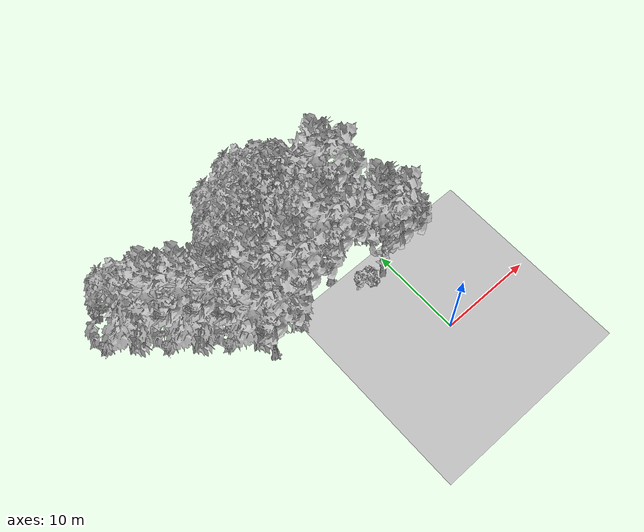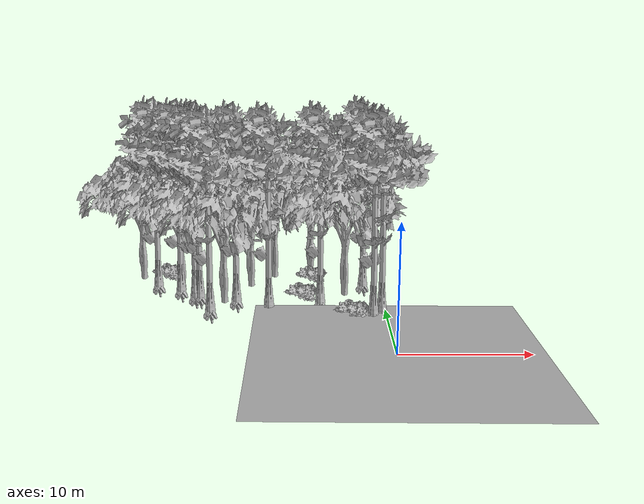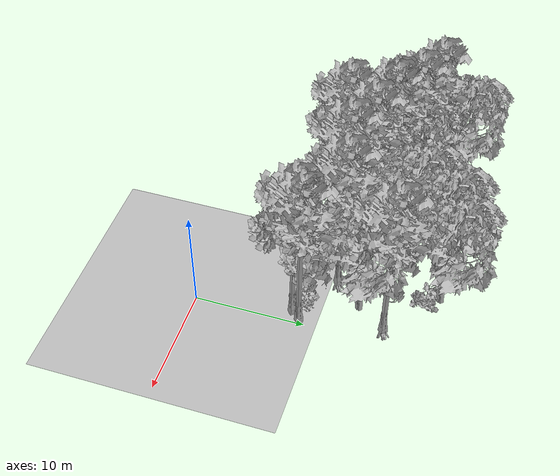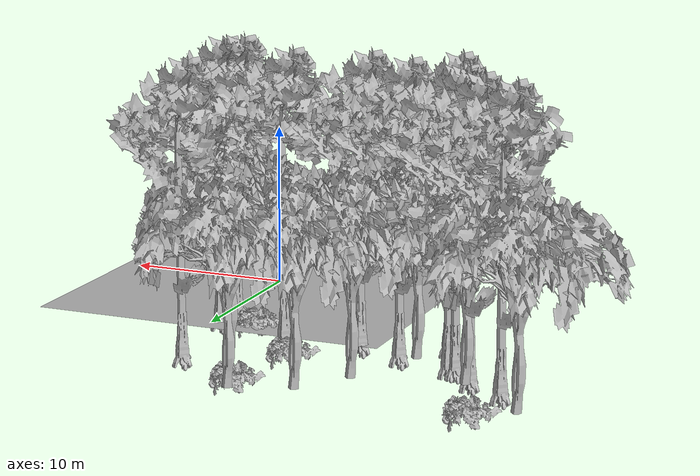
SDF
<sdf version="1.7">
 <world name="default">
  <model name="ground_plane">
   <static>1</static>
   <link name="link">
    <collision name="collision">
     <geometry><plane><normal>0 0 1</normal><size>100 100</size></plane></geometry>
     <surface><contact><ode><min_depth>0.01</min_depth><max_vel>0</max_vel></ode></contact></surface>
    </collision>
    <visual name="grass">
     <cast_shadows>0</cast_shadows>
     <geometry>
      <mesh>
       <scale>0.41000000000000003 0.41000000000000003 0.1</scale>
       <uri>file://grass_plane/meshes/grass_plane.dae</uri>
      </mesh>
     </geometry>
    </visual>
   </link>
  </model>
  <model name="Tree 29">
   <static>1</static>
   <pose>-18.007581378090077 14.752689949842008 0 1.57079 -0 0</pose>
   <link name="link">
    <collision name="collision">
     <geometry><mesh><scale>5 5 5</scale><uri>model://tree_9/meshes/tree_9.obj</uri></mesh></geometry>
    </collision>
    <visual name="visual">
     <geometry><mesh><scale>5 5 5</scale><uri>model://tree_9/meshes/tree_9.obj</uri></mesh></geometry>
    </visual>
   </link>
  </model>
  <model name="Tree 67">
   <static>1</static>
   <pose>-16.51270980587259 13.015987364559223 0 1.57079 -0 0</pose>
   <link name="link">
    <collision name="collision">
     <geometry><mesh><scale>5 5 5</scale><uri>model://tree_9/meshes/tree_9.obj</uri></mesh></geometry>
    </collision>
    <visual name="visual">
     <geometry><mesh><scale>5 5 5</scale><uri>model://tree_9/meshes/tree_9.obj</uri></mesh></geometry>
    </visual>
   </link>
  </model>
  <model name="Tree 90">
   <static>1</static>
   <pose>-14.790443552141355 9.24054400391472 0 1.57079 -0 0</pose>
   <link name="link">
    <collision name="collision">
     <geometry><mesh><scale>5 5 5</scale><uri>model://tree_9/meshes/tree_9.obj</uri></mesh></geometry>
    </collision>
    <visual name="visual">
     <geometry><mesh><scale>5 5 5</scale><uri>model://tree_9/meshes/tree_9.obj</uri></mesh></geometry>
    </visual>
   </link>
  </model>
  <model name="Tree 95">
   <static>1</static>
   <pose>-1.4726169784086949 16.752272059725186 0 1.57079 -0 0</pose>
   <link name="link">
    <collision name="collision">
     <geometry><mesh><scale>5 5 5</scale><uri>model://tree_9/meshes/tree_9.obj</uri></mesh></geometry>
    </collision>
    <visual name="visual">
     <geometry><mesh><scale>5 5 5</scale><uri>model://tree_9/meshes/tree_9.obj</uri></mesh></geometry>
    </visual>
   </link>
  </model>
  <model name="Tree 99">
   <static>1</static>
   <pose>-0.3490850998866293 9.459869655986061 0 1.57079 -0 0</pose>
   <link name="link">
    <collision name="collision">
     <geometry><mesh><scale>5 5 5</scale><uri>model://tree_9/meshes/tree_9.obj</uri></mesh></geometry>
    </collision>
    <visual name="visual">
     <geometry><mesh><scale>5 5 5</scale><uri>model://tree_9/meshes/tree_9.obj</uri></mesh></geometry>
    </visual>
   </link>
  </model>
  <model name="Tree 112">
   <static>1</static>
   <pose>-9.899704015344525 10.689790009107803 0 1.57079 -0 0</pose>
   <link name="link">
    <collision name="collision">
     <geometry><mesh><scale>5 5 5</scale><uri>model://tree_9/meshes/tree_9.obj</uri></mesh></geometry>
    </collision>
    <visual name="visual">
     <geometry><mesh><scale>5 5 5</scale><uri>model://tree_9/meshes/tree_9.obj</uri></mesh></geometry>
    </visual>
   </link>
  </model>
  <model name="Tree 158">
   <static>1</static>
   <pose>-18.06155878847854 15.18476219161063 0 1.57079 -0 0</pose>
   <link name="link">
    <collision name="collision">
     <geometry><mesh><scale>5 5 5</scale><uri>model://tree_2/meshes/tree_2.obj</uri></mesh></geometry>
    </collision>
    <visual name="visual">
     <geometry><mesh><scale>5 5 5</scale><uri>model://tree_2/meshes/tree_2.obj</uri></mesh></geometry>
    </visual>
   </link>
  </model>
  <model name="Tree 222">
   <static>1</static>
   <pose>-20.28313257199036 16.2040404915911 0 1.57079 -0 0</pose>
   <link name="link">
    <collision name="collision">
     <geometry><mesh><scale>5 5 5</scale><uri>model://tree_9/meshes/tree_9.obj</uri></mesh></geometry>
    </collision>
    <visual name="visual">
     <geometry><mesh><scale>5 5 5</scale><uri>model://tree_9/meshes/tree_9.obj</uri></mesh></geometry>
    </visual>
   </link>
  </model>
  <model name="Tree 241">
   <static>1</static>
   <pose>-16.08878769225285 12.952865579866732 0 1.57079 -0 0</pose>
   <link name="link">
    <collision name="collision">
     <geometry><mesh><scale>5 5 5</scale><uri>model://tree_9/meshes/tree_9.obj</uri></mesh></geometry>
    </collision>
    <visual name="visual">
     <geometry><mesh><scale>5 5 5</scale><uri>model://tree_9/meshes/tree_9.obj</uri></mesh></geometry>
    </visual>
   </link>
  </model>
  <model name="Tree 259">
   <static>1</static>
   <pose>-13.932378342446093 11.778304054915033 0 1.57079 -0 0</pose>
   <link name="link">
    <collision name="collision">
     <geometry><mesh><scale>5 5 5</scale><uri>model://tree_2/meshes/tree_2.obj</uri></mesh></geometry>
    </collision>
    <visual name="visual">
     <geometry><mesh><scale>5 5 5</scale><uri>model://tree_2/meshes/tree_2.obj</uri></mesh></geometry>
    </visual>
   </link>
  </model>
  <model name="Tree 260">
   <static>1</static>
   <pose>-12.782477383756117 11.96601270278721 0 1.57079 -0 0</pose>
   <link name="link">
    <collision name="collision">
     <geometry><mesh><scale>5 5 5</scale><uri>model://tree_9/meshes/tree_9.obj</uri></mesh></geometry>
    </collision>
    <visual name="visual">
     <geometry><mesh><scale>5 5 5</scale><uri>model://tree_9/meshes/tree_9.obj</uri></mesh></geometry>
    </visual>
   </link>
  </model>
  <model name="Tree 305">
   <static>1</static>
   <pose>-3.383652878231004 14.09125362563897 0 1.57079 -0 0</pose>
   <link name="link">
    <collision name="collision">
     <geometry><mesh><scale>5 5 5</scale><uri>model://tree_2/meshes/tree_2.obj</uri></mesh></geometry>
    </collision>
    <visual name="visual">
     <geometry><mesh><scale>5 5 5</scale><uri>model://tree_2/meshes/tree_2.obj</uri></mesh></geometry>
    </visual>
   </link>
  </model>
  <model name="Tree 369">
   <static>1</static>
   <pose>-6.366387281033305 20.75947892196912 0 1.57079 -0 0</pose>
   <link name="link">
    <collision name="collision">
     <geometry><mesh><scale>5 5 5</scale><uri>model://tree_2/meshes/tree_2.obj</uri></mesh></geometry>
    </collision>
    <visual name="visual">
     <geometry><mesh><scale>5 5 5</scale><uri>model://tree_2/meshes/tree_2.obj</uri></mesh></geometry>
    </visual>
   </link>
  </model>
  <model name="Tree 370">
   <static>1</static>
   <pose>-22.212911323495682 18.787901693262626 0 1.57079 -0 0</pose>
   <link name="link">
    <collision name="collision">
     <geometry><mesh><scale>5 5 5</scale><uri>model://tree_2/meshes/tree_2.obj</uri></mesh></geometry>
    </collision>
    <visual name="visual">
     <geometry><mesh><scale>5 5 5</scale><uri>model://tree_2/meshes/tree_2.obj</uri></mesh></geometry>
    </visual>
   </link>
  </model>
  <model name="Tree 413">
   <static>1</static>
   <pose>-5.488455737755089 11.592380355712237 0 1.57079 -0 0</pose>
   <link name="link">
    <collision name="collision">
     <geometry><mesh><scale>5 5 5</scale><uri>model://tree_9/meshes/tree_9.obj</uri></mesh></geometry>
    </collision>
    <visual name="visual">
     <geometry><mesh><scale>5 5 5</scale><uri>model://tree_9/meshes/tree_9.obj</uri></mesh></geometry>
    </visual>
   </link>
  </model>
  <model name="Tree 428">
   <static>1</static>
   <pose>-1.1106988840582517 8.644596109405292 0 1.57079 -0 0</pose>
   <link name="link">
    <collision name="collision">
     <geometry><mesh><scale>5 5 5</scale><uri>model://tree_9/meshes/tree_9.obj</uri></mesh></geometry>
    </collision>
    <visual name="visual">
     <geometry><mesh><scale>5 5 5</scale><uri>model://tree_9/meshes/tree_9.obj</uri></mesh></geometry>
    </visual>
   </link>
  </model>
  <model name="Tree 465">
   <static>1</static>
   <pose>-11.874984017880728 16.58736381734333 0 1.57079 -0 0</pose>
   <link name="link">
    <collision name="collision">
     <geometry><mesh><scale>5 5 5</scale><uri>model://tree_2/meshes/tree_2.obj</uri></mesh></geometry>
    </collision>
    <visual name="visual">
     <geometry><mesh><scale>5 5 5</scale><uri>model://tree_2/meshes/tree_2.obj</uri></mesh></geometry>
    </visual>
   </link>
  </model>
  <model name="Tree 471">
   <static>1</static>
   <pose>-9.795850952143866 19.586856190409037 0 1.57079 -0 0</pose>
   <link name="link">
    <collision name="collision">
     <geometry><mesh><scale>5 5 5</scale><uri>model://tree_2/meshes/tree_2.obj</uri></mesh></geometry>
    </collision>
    <visual name="visual">
     <geometry><mesh><scale>5 5 5</scale><uri>model://tree_2/meshes/tree_2.obj</uri></mesh></geometry>
    </visual>
   </link>
  </model>
  <model name="Bush 39">
   <static>1</static>
   <pose>-19.953289700927176 20.186532633723488 0 1.57079 -0 0</pose>
   <link name="link">
    <collision name="collision">
     <geometry><mesh><scale>2 2 2</scale><uri>model://bush_2/meshes/bush_2.obj</uri></mesh></geometry>
    </collision>
    <visual name="visual">
     <geometry><mesh><scale>5 5 5</scale><uri>model://bush_2/meshes/bush_2.obj</uri></mesh></geometry>
    </visual>
   </link>
  </model>
  <model name="Bush 54">
   <static>1</static>
   <pose>-7.041160680757564 14.053552839109201 0 1.57079 -0 0</pose>
   <link name="link">
    <collision name="collision">
     <geometry><mesh><scale>2 2 2</scale><uri>model://bush_2/meshes/bush_2.obj</uri></mesh></geometry>
    </collision>
    <visual name="visual">
     <geometry><mesh><scale>5 5 5</scale><uri>model://bush_2/meshes/bush_2.obj</uri></mesh></geometry>
    </visual>
   </link>
  </model>
  <model name="Bush 71">
   <static>1</static>
   <pose>-6.112522704412548 19.5256208896092 0 1.57079 -0 0</pose>
   <link name="link">
    <collision name="collision">
     <geometry><mesh><scale>2 2 2</scale><uri>model://bush_2/meshes/bush_2.obj</uri></mesh></geometry>
    </collision>
    <visual name="visual">
     <geometry><mesh><scale>5 5 5</scale><uri>model://bush_2/meshes/bush_2.obj</uri></mesh></geometry>
    </visual>
   </link>
  </model>
  <model name="Bush 119">
   <static>1</static>
   <pose>-2.757806506824508 9.242184490297056 0 1.57079 -0 0</pose>
   <link name="link">
    <collision name="collision">
     <geometry><mesh><scale>2 2 2</scale><uri>model://bush_2/meshes/bush_2.obj</uri></mesh></geometry>
    </collision>
    <visual name="visual">
     <geometry><mesh><scale>5 5 5</scale><uri>model://bush_2/meshes/bush_2.obj</uri></mesh></geometry>
    </visual>
   </link>
  </model>
 </world>
</sdf>
